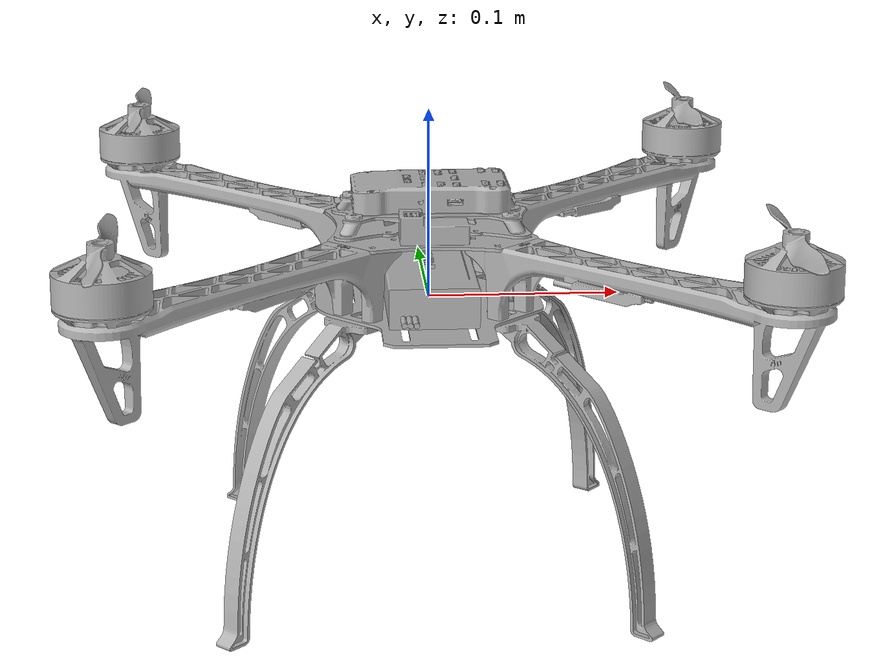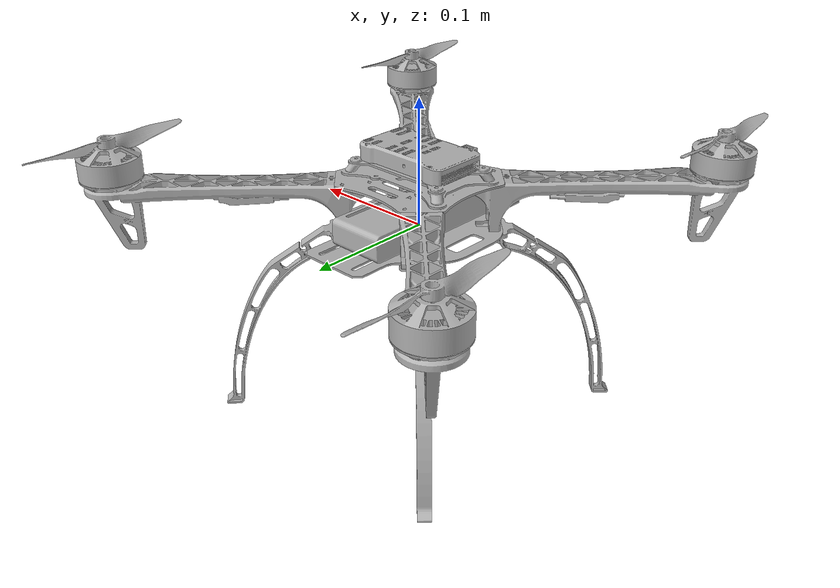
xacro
<?xml version="1.0" ?>
<robot name="f450_quadcopter" xmlns:xacro="http://www.ros.org/wiki/xacro">

<xacro:include filename="$(find f450_quadcopter_description)/urdf/materials.xacro" />
<xacro:include filename="$(find f450_quadcopter_description)/urdf/f450_quadcopter.trans" />
<xacro:include filename="$(find f450_quadcopter_description)/urdf/f450_quadcopter.gazebo" />
<link name="base_link">
  <inertial>
    <origin xyz="0.0009406193490346438 -0.0030878426147049366 0.04067397897871896" rpy="0 0 0"/>
    <mass value="0.7297364198372553"/>
    <inertia ixx="0.000888" iyy="0.000794" izz="0.000978" ixy="-7e-06" iyz="3e-06" ixz="-1.1e-05"/>
  </inertial>
  <visual>
    <origin xyz="0 0 0" rpy="0 0 0"/>
    <geometry>
      <mesh filename="package://f450_quadcopter_description/meshes/base_link.stl" scale="0.001 0.001 0.001"/>
    </geometry>
    <material name="silver"/>
  </visual>
  <collision>
    <origin xyz="0 0 0" rpy="0 0 0"/>
    <geometry>
      <mesh filename="package://f450_quadcopter_description/meshes/base_link.stl" scale="0.001 0.001 0.001"/>
    </geometry>
  </collision>
</link>

<link name="front_right_landing_gear_1">
  <inertial>
    <origin xyz="0.025294261945812482 -0.041134436986035604 -0.05102739648689262" rpy="0 0 0"/>
    <mass value="0.07882046618471968"/>
    <inertia ixx="0.000231" iyy="0.000231" izz="9.8e-05" ixy="4.8e-05" iyz="-8.5e-05" ixz="8.5e-05"/>
  </inertial>
  <visual>
    <origin xyz="-0.046836 0.032032 0.001109" rpy="0 0 0"/>
    <geometry>
      <mesh filename="package://f450_quadcopter_description/meshes/front_right_landing_gear_1.stl" scale="0.001 0.001 0.001"/>
    </geometry>
    <material name="silver"/>
  </visual>
  <collision>
    <origin xyz="-0.046836 0.032032 0.001109" rpy="0 0 0"/>
    <geometry>
      <mesh filename="package://f450_quadcopter_description/meshes/front_right_landing_gear_1.stl" scale="0.001 0.001 0.001"/>
    </geometry>
  </collision>
</link>

<link name="front_left_landing_gear_1">
  <inertial>
    <origin xyz="0.024360822856426795 0.04342215792884165 -0.05102747097051817" rpy="0 0 0"/>
    <mass value="0.07882027338023602"/>
    <inertia ixx="0.000239" iyy="0.000223" izz="9.8e-05" ixy="-4.7e-05" iyz="9.3e-05" ixz="7.8e-05"/>
  </inertial>
  <visual>
    <origin xyz="-0.046836 -0.032032 0.001109" rpy="0 0 0"/>
    <geometry>
      <mesh filename="package://f450_quadcopter_description/meshes/front_left_landing_gear_1.stl" scale="0.001 0.001 0.001"/>
    </geometry>
    <material name="silver"/>
  </visual>
  <collision>
    <origin xyz="-0.046836 -0.032032 0.001109" rpy="0 0 0"/>
    <geometry>
      <mesh filename="package://f450_quadcopter_description/meshes/front_left_landing_gear_1.stl" scale="0.001 0.001 0.001"/>
    </geometry>
  </collision>
</link>

<link name="back_right_landing_gear_1">
  <inertial>
    <origin xyz="-0.02667350157922735 -0.03975523117073223 -0.05102720548397814" rpy="0 0 0"/>
    <mass value="0.07882036783881333"/>
    <inertia ixx="0.000231" iyy="0.000231" izz="9.8e-05" ixy="-4.8e-05" iyz="-8.5e-05" ixz="-8.5e-05"/>
  </inertial>
  <visual>
    <origin xyz="0.04622 0.032032 0.001109" rpy="0 0 0"/>
    <geometry>
      <mesh filename="package://f450_quadcopter_description/meshes/back_right_landing_gear_1.stl" scale="0.001 0.001 0.001"/>
    </geometry>
    <material name="silver"/>
  </visual>
  <collision>
    <origin xyz="0.04622 0.032032 0.001109" rpy="0 0 0"/>
    <geometry>
      <mesh filename="package://f450_quadcopter_description/meshes/back_right_landing_gear_1.stl" scale="0.001 0.001 0.001"/>
    </geometry>
  </collision>
</link>

<link name="back_left_landing_gear_1">
  <inertial>
    <origin xyz="-0.025294199385980626 0.04113446662354433 -0.05102743593945869" rpy="0 0 0"/>
    <mass value="0.07882021989137157"/>
    <inertia ixx="0.000231" iyy="0.000231" izz="9.8e-05" ixy="4.8e-05" iyz="8.5e-05" ixz="-8.5e-05"/>
  </inertial>
  <visual>
    <origin xyz="0.04622 -0.032032 0.001109" rpy="0 0 0"/>
    <geometry>
      <mesh filename="package://f450_quadcopter_description/meshes/back_left_landing_gear_1.stl" scale="0.001 0.001 0.001"/>
    </geometry>
    <material name="silver"/>
  </visual>
  <collision>
    <origin xyz="0.04622 -0.032032 0.001109" rpy="0 0 0"/>
    <geometry>
      <mesh filename="package://f450_quadcopter_description/meshes/back_left_landing_gear_1.stl" scale="0.001 0.001 0.001"/>
    </geometry>
  </collision>
</link>

<link name="front_right_frame_with_ESC_1">
  <inertial>
    <origin xyz="0.0627356625385908 -0.0462589561999283 -0.00913633438305346" rpy="0 0 0"/>
    <mass value="0.05710348684611358"/>
    <inertia ixx="0.000136" iyy="0.000136" izz="0.000261" ixy="0.000126" iyz="-2e-06" ixz="2e-06"/>
  </inertial>
  <visual>
    <origin xyz="-0.031774 0.048083 -0.037298" rpy="0 0 0"/>
    <geometry>
      <mesh filename="package://f450_quadcopter_description/meshes/front_right_frame_with_ESC_1.stl" scale="0.001 0.001 0.001"/>
    </geometry>
    <material name="silver"/>
  </visual>
  <collision>
    <origin xyz="-0.031774 0.048083 -0.037298" rpy="0 0 0"/>
    <geometry>
      <mesh filename="package://f450_quadcopter_description/meshes/front_right_frame_with_ESC_1.stl" scale="0.001 0.001 0.001"/>
    </geometry>
  </collision>
</link>

<link name="front_left_frame_with_ESC_1">
  <inertial>
    <origin xyz="0.0628547617311962 0.046141647985313866 -0.00912134468470065" rpy="0 0 0"/>
    <mass value="0.05710345576082083"/>
    <inertia ixx="0.000136" iyy="0.000136" izz="0.000261" ixy="-0.000126" iyz="2e-06" ixz="2e-06"/>
  </inertial>
  <visual>
    <origin xyz="-0.031774 -0.048083 -0.037298" rpy="0 0 0"/>
    <geometry>
      <mesh filename="package://f450_quadcopter_description/meshes/front_left_frame_with_ESC_1.stl" scale="0.001 0.001 0.001"/>
    </geometry>
    <material name="silver"/>
  </visual>
  <collision>
    <origin xyz="-0.031774 -0.048083 -0.037298" rpy="0 0 0"/>
    <geometry>
      <mesh filename="package://f450_quadcopter_description/meshes/front_left_frame_with_ESC_1.stl" scale="0.001 0.001 0.001"/>
    </geometry>
  </collision>
</link>

<link name="back_right_frame_with_ESC_1">
  <inertial>
    <origin xyz="-0.06287835959192258 -0.04609961114854541 -0.009137427312031227" rpy="0 0 0"/>
    <mass value="0.05567256178416202"/>
    <inertia ixx="0.000133" iyy="0.000133" izz="0.000254" ixy="-0.000122" iyz="-2e-06" ixz="-2e-06"/>
  </inertial>
  <visual>
    <origin xyz="0.031158 0.048083 -0.037298" rpy="0 0 0"/>
    <geometry>
      <mesh filename="package://f450_quadcopter_description/meshes/back_right_frame_with_ESC_1.stl" scale="0.001 0.001 0.001"/>
    </geometry>
    <material name="silver"/>
  </visual>
  <collision>
    <origin xyz="0.031158 0.048083 -0.037298" rpy="0 0 0"/>
    <geometry>
      <mesh filename="package://f450_quadcopter_description/meshes/back_right_frame_with_ESC_1.stl" scale="0.001 0.001 0.001"/>
    </geometry>
  </collision>
</link>

<link name="back_left_frame_with_ESC_1">
  <inertial>
    <origin xyz="-0.06200791017040484 0.04550785627701051 -0.009113747930991015" rpy="0 0 0"/>
    <mass value="0.05567258778764262"/>
    <inertia ixx="0.000134" iyy="0.000134" izz="0.000256" ixy="0.000124" iyz="2e-06" ixz="-2e-06"/>
  </inertial>
  <visual>
    <origin xyz="0.031158 -0.048083 -0.037298" rpy="0 0 0"/>
    <geometry>
      <mesh filename="package://f450_quadcopter_description/meshes/back_left_frame_with_ESC_1.stl" scale="0.001 0.001 0.001"/>
    </geometry>
    <material name="silver"/>
  </visual>
  <collision>
    <origin xyz="0.031158 -0.048083 -0.037298" rpy="0 0 0"/>
    <geometry>
      <mesh filename="package://f450_quadcopter_description/meshes/back_left_frame_with_ESC_1.stl" scale="0.001 0.001 0.001"/>
    </geometry>
  </collision>
</link>

<link name="front_right_brushless_motor_1">
  <inertial>
    <origin xyz="-3.925789388806167e-05 2.1907662166337216e-05 0.012919945336722305" rpy="0 0 0"/>
    <mass value="0.14416060249891507"/>
    <inertia ixx="2.1e-05" iyy="2.1e-05" izz="2.8e-05" ixy="0.0" iyz="0.0" ixz="-0.0"/>
  </inertial>
  <visual>
    <origin xyz="-0.159209 0.158912 -0.037543" rpy="0 0 0"/>
    <geometry>
      <mesh filename="package://f450_quadcopter_description/meshes/front_right_brushless_motor_1.stl" scale="0.001 0.001 0.001"/>
    </geometry>
    <material name="silver"/>
  </visual>
  <collision>
    <origin xyz="-0.159209 0.158912 -0.037543" rpy="0 0 0"/>
    <geometry>
      <mesh filename="package://f450_quadcopter_description/meshes/front_right_brushless_motor_1.stl" scale="0.001 0.001 0.001"/>
    </geometry>
  </collision>
  <motor max_torque="0.289" max_speed="11100" efficiency="0.8" Kv="1000" Kt="0.024" />
</link>

<link name="front_left_brushless_motor_1">
  <inertial>
    <origin xyz="-3.956759723924841e-05 2.1728352646438465e-05 0.01291994533672182" rpy="0 0 0"/>
    <mass value="0.14416060249891507"/>
    <inertia ixx="2.1e-05" iyy="2.1e-05" izz="2.8e-05" ixy="0.0" iyz="0.0" ixz="-0.0"/>
  </inertial>
  <visual>
    <origin xyz="-0.15922 -0.158901 -0.037543" rpy="0 0 0"/>
    <geometry>
      <mesh filename="package://f450_quadcopter_description/meshes/front_left_brushless_motor_1.stl" scale="0.001 0.001 0.001"/>
    </geometry>
    <material name="silver"/>
  </visual>
  <collision>
    <origin xyz="-0.15922 -0.158901 -0.037543" rpy="0 0 0"/>
    <geometry>
      <mesh filename="package://f450_quadcopter_description/meshes/front_left_brushless_motor_1.stl" scale="0.001 0.001 0.001"/>
    </geometry>
  </collision>
  <motor max_torque="0.289" max_speed="11100" efficiency="0.8" Kv="1000" Kt="0.024" />
</link>

<link name="back_left_brushless_motor_1">
  <inertial>
    <origin xyz="-3.938828772379055e-05 2.141864929547377e-05 0.012919945336723838" rpy="0 0 0"/>
    <mass value="0.14416060249891507"/>
    <inertia ixx="2.1e-05" iyy="2.1e-05" izz="2.8e-05" ixy="0.0" iyz="0.0" ixz="-0.0"/>
  </inertial>
  <visual>
    <origin xyz="0.158593 -0.158912 -0.037543" rpy="0 0 0"/>
    <geometry>
      <mesh filename="package://f450_quadcopter_description/meshes/back_left_brushless_motor_1.stl" scale="0.001 0.001 0.001"/>
    </geometry>
    <material name="silver"/>
  </visual>
  <collision>
    <origin xyz="0.158593 -0.158912 -0.037543" rpy="0 0 0"/>
    <geometry>
      <mesh filename="package://f450_quadcopter_description/meshes/back_left_brushless_motor_1.stl" scale="0.001 0.001 0.001"/>
    </geometry>
  </collision>
  <motor max_torque="0.289" max_speed="11100" efficiency="0.8" Kv="1000" Kt="0.024" />
</link>

<link name="back_right_brushless_motor_1">
  <inertial>
    <origin xyz="-3.907858437302014e-05 2.1597958815539053e-05 0.012919945336721236" rpy="0 0 0"/>
    <mass value="0.14416060249891507"/>
    <inertia ixx="2.1e-05" iyy="2.1e-05" izz="2.8e-05" ixy="0.0" iyz="0.0" ixz="-0.0"/>
  </inertial>
  <visual>
    <origin xyz="0.158604 0.158901 -0.037543" rpy="0 0 0"/>
    <geometry>
      <mesh filename="package://f450_quadcopter_description/meshes/back_right_brushless_motor_1.stl" scale="0.001 0.001 0.001"/>
    </geometry>
    <material name="silver"/>
  </visual>
  <collision>
    <origin xyz="0.158604 0.158901 -0.037543" rpy="0 0 0"/>
    <geometry>
      <mesh filename="package://f450_quadcopter_description/meshes/back_right_brushless_motor_1.stl" scale="0.001 0.001 0.001"/>
    </geometry>
  </collision>
  <motor max_torque="0.289" max_speed="11100" efficiency="0.8" Kv="1000" Kt="0.024" />
</link>

<link name="front_right_propeller_1">
  <inertial>
    <origin xyz="1.0534697383879355e-07 4.1879103393482886e-07 0.0027200813911011368" rpy="0 0 0"/>
    <mass value="0.01381427696565738"/>
    <inertia ixx="1.1e-05" iyy="0.0" izz="1.1e-05" ixy="-0.0" iyz="0.0" ixz="0.0"/>
  </inertial>
  <visual>
    <origin xyz="-0.159209 0.158912 -0.065543" rpy="0 0 0"/>
    <geometry>
      <mesh filename="package://f450_quadcopter_description/meshes/front_right_propeller_1.stl" scale="0.001 0.001 0.001"/>
    </geometry>
    <material name="silver"/>
  </visual>
  <collision>
    <origin xyz="-0.159209 0.158912 -0.065543" rpy="0 0 0"/>
    <geometry>
      <mesh filename="package://f450_quadcopter_description/meshes/front_right_propeller_1.stl" scale="0.001 0.001 0.001"/>
    </geometry>
  </collision>
</link>

<link name="front_left_propeller_1">
  <inertial>
    <origin xyz="-2.0435637707039156e-07 2.394815140360773e-07 0.0027200813911007204" rpy="0 0 0"/>
    <mass value="0.01381427696565738"/>
    <inertia ixx="1.1e-05" iyy="0.0" izz="1.1e-05" ixy="-0.0" iyz="0.0" ixz="0.0"/>
  </inertial>
  <visual>
    <origin xyz="-0.15922 -0.158901 -0.065543" rpy="0 0 0"/>
    <geometry>
      <mesh filename="package://f450_quadcopter_description/meshes/front_left_propeller_1.stl" scale="0.001 0.001 0.001"/>
    </geometry>
    <material name="silver"/>
  </visual>
  <collision>
    <origin xyz="-0.15922 -0.158901 -0.065543" rpy="0 0 0"/>
    <geometry>
      <mesh filename="package://f450_quadcopter_description/meshes/front_left_propeller_1.stl" scale="0.001 0.001 0.001"/>
    </geometry>
  </collision>
</link>

<link name="back_right_propeller_1">
  <inertial>
    <origin xyz="2.846564886027636e-07 1.0908768358075527e-07 0.0027200813911001237" rpy="0 0 0"/>
    <mass value="0.01381427696565738"/>
    <inertia ixx="1.1e-05" iyy="0.0" izz="1.1e-05" ixy="-0.0" iyz="0.0" ixz="0.0"/>
  </inertial>
  <visual>
    <origin xyz="0.158604 0.158901 -0.065543" rpy="0 0 0"/>
    <geometry>
      <mesh filename="package://f450_quadcopter_description/meshes/back_right_propeller_1.stl" scale="0.001 0.001 0.001"/>
    </geometry>
    <material name="silver"/>
  </visual>
  <collision>
    <origin xyz="0.158604 0.158901 -0.065543" rpy="0 0 0"/>
    <geometry>
      <mesh filename="package://f450_quadcopter_description/meshes/back_right_propeller_1.stl" scale="0.001 0.001 0.001"/>
    </geometry>
  </collision>
</link>

<link name="back_left_propeller_1">
  <inertial>
    <origin xyz="-2.5046861723554414e-08 -7.022183695637452e-08 0.0027200813911026495" rpy="0 0 0"/>
    <mass value="0.01381427696565738"/>
    <inertia ixx="1.1e-05" iyy="0.0" izz="1.1e-05" ixy="-0.0" iyz="0.0" ixz="0.0"/>
  </inertial>
  <visual>
    <origin xyz="0.158593 -0.158912 -0.065543" rpy="0 0 0"/>
    <geometry>
      <mesh filename="package://f450_quadcopter_description/meshes/back_left_propeller_1.stl" scale="0.001 0.001 0.001"/>
    </geometry>
    <material name="silver"/>
  </visual>
  <collision>
    <origin xyz="0.158593 -0.158912 -0.065543" rpy="0 0 0"/>
    <geometry>
      <mesh filename="package://f450_quadcopter_description/meshes/back_left_propeller_1.stl" scale="0.001 0.001 0.001"/>
    </geometry>
  </collision>
</link>

<link name="battery_1">
  <inertial>
    <origin xyz="-3.459575873813255e-05 0.0016091484657327873 0.009903990760029159" rpy="0 0 0"/>
    <mass value="0.945247365761568"/>
    <inertia ixx="0.001446" iyy="0.000201" izz="0.001585" ixy="0.0" iyz="2e-06" ixz="0.0"/>
  </inertial>
  <visual>
    <origin xyz="0.001011 -0.0 -0.000492" rpy="0 0 0"/>
    <geometry>
      <mesh filename="package://f450_quadcopter_description/meshes/battery_1.stl" scale="0.001 0.001 0.001"/>
    </geometry>
    <material name="silver"/>
  </visual>
  <collision>
    <origin xyz="0.001011 -0.0 -0.000492" rpy="0 0 0"/>
    <geometry>
      <mesh filename="package://f450_quadcopter_description/meshes/battery_1.stl" scale="0.001 0.001 0.001"/>
    </geometry>
  </collision>
</link>

<joint name="front_left_lading_gear_joint" type="fixed">
  <origin xyz="0.046836 -0.032032 -0.001109" rpy="0 0 0"/>
  <parent link="base_link"/>
  <child link="front_right_landing_gear_1"/>
</joint>

<joint name="front_right_lading_gear_joint" type="fixed">
  <origin xyz="0.046836 0.032032 -0.001109" rpy="0 0 0"/>
  <parent link="base_link"/>
  <child link="front_left_landing_gear_1"/>
</joint>

<joint name="back_right_lading_gear_joint" type="fixed">
  <origin xyz="-0.04622 -0.032032 -0.001109" rpy="0 0 0"/>
  <parent link="base_link"/>
  <child link="back_right_landing_gear_1"/>
</joint>

<joint name="back_left_lading_gear_joint" type="fixed">
  <origin xyz="-0.04622 0.032032 -0.001109" rpy="0 0 0"/>
  <parent link="base_link"/>
  <child link="back_left_landing_gear_1"/>
</joint>

<joint name="front_right_frame_with_ESC_joint" type="fixed">
  <origin xyz="0.031774 -0.048083 0.037298" rpy="0 0 0"/>
  <parent link="base_link"/>
  <child link="front_right_frame_with_ESC_1"/>
</joint>

<joint name="front_left_frame_with_ESC_joint" type="fixed">
  <origin xyz="0.031774 0.048083 0.037298" rpy="0 0 0"/>
  <parent link="base_link"/>
  <child link="front_left_frame_with_ESC_1"/>
</joint>

<joint name="back_right_frame_with_ESC_joint" type="fixed">
  <origin xyz="-0.031158 -0.048083 0.037298" rpy="0 0 0"/>
  <parent link="base_link"/>
  <child link="back_right_frame_with_ESC_1"/>
</joint>

<joint name="back_left_frame_with_ESC_joint" type="fixed">
  <origin xyz="-0.031158 0.048083 0.037298" rpy="0 0 0"/>
  <parent link="base_link"/>
  <child link="back_left_frame_with_ESC_1"/>
</joint>

<joint name="front_right_brushless_motor_joint" type="fixed">
  <origin xyz="0.127435 -0.110829 0.000245" rpy="0 0 0"/>
  <parent link="front_right_frame_with_ESC_1"/>
  <child link="front_right_brushless_motor_1"/>
</joint>

<joint name="front_left_brushless_motor_joint" type="fixed">
  <origin xyz="0.127446 0.110818 0.000245" rpy="0 0 0"/>
  <parent link="front_left_frame_with_ESC_1"/>
  <child link="front_left_brushless_motor_1"/>
</joint>

<joint name="back_left_brushless_motor_joint" type="fixed">
  <origin xyz="-0.127435 0.110829 0.000245" rpy="0 0 0"/>
  <parent link="back_left_frame_with_ESC_1"/>
  <child link="back_left_brushless_motor_1"/>
</joint>

<joint name="back_right_brushless_motor_joint" type="fixed">
  <origin xyz="-0.127446 -0.110818 0.000245" rpy="0 0 0"/>
  <parent link="back_right_frame_with_ESC_1"/>
  <child link="back_right_brushless_motor_1"/>
</joint>

<joint name="front_right_propeller_joint" type="continuous">
  <origin xyz="0.0 0.0 0.028" rpy="0 0 0"/>
  <parent link="front_right_brushless_motor_1"/>
  <child link="front_right_propeller_1"/>
  <axis xyz="0.0 0.0 1.0"/>
</joint>

<joint name="front_left_propeller_joint" type="continuous">
  <origin xyz="0.0 0.0 0.028" rpy="0 0 0"/>
  <parent link="front_left_brushless_motor_1"/>
  <child link="front_left_propeller_1"/>
  <axis xyz="0.0 0.0 -1.0"/>
</joint>

<joint name="back_right_propeller_joint" type="continuous">
  <origin xyz="0.0 0.0 0.028" rpy="0 0 0"/>
  <parent link="back_right_brushless_motor_1"/>
  <child link="back_right_propeller_1"/>
  <axis xyz="-0.0 0.0 -1.0"/>
</joint>

<joint name="back_left_propeller_joint" type="continuous">
  <origin xyz="0.0 0.0 0.028" rpy="0 0 0"/>
  <parent link="back_left_brushless_motor_1"/>
  <child link="back_left_propeller_1"/>
  <axis xyz="0.0 0.0 1.0"/>
</joint>

<joint name="battery_joint" type="fixed">
  <origin xyz="-0.001011 0.0 0.000492" rpy="0 0 0"/>
  <parent link="base_link"/>
  <child link="battery_1"/>
</joint>

</robot>

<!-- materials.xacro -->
<robot name="f450_quadcopter" xmlns:xacro="http://www.ros.org/wiki/xacro" >

<material name="silver">
  <color rgba="0.700 0.700 0.700 1.000"/>
</material>

</robot>

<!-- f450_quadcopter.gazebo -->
<robot name="f450_quadcopter" xmlns:xacro="http://www.ros.org/wiki/xacro" >

<xacro:property name="body_color" value="Gazebo/Silver" />

<gazebo>
  <plugin name="control" filename="libgazebo_ros_control.so">
    <legacyModeNS>true</legacyModeNS>
  </plugin>
</gazebo>

<gazebo reference="base_link">
  <material>${body_color}</material>
  <mu1>0.2</mu1>
  <mu2>0.2</mu2>
  <selfCollide>true</selfCollide>
  <gravity>true</gravity>
</gazebo>

<gazebo reference="front_right_landing_gear_1">
  <material>${body_color}</material>
  <mu1>0.2</mu1>
  <mu2>0.2</mu2>
  <selfCollide>true</selfCollide>
</gazebo>

<gazebo reference="front_left_landing_gear_1">
  <material>${body_color}</material>
  <mu1>0.2</mu1>
  <mu2>0.2</mu2>
  <selfCollide>true</selfCollide>
</gazebo>

<gazebo reference="back_right_landing_gear_1">
  <material>${body_color}</material>
  <mu1>0.2</mu1>
  <mu2>0.2</mu2>
  <selfCollide>true</selfCollide>
</gazebo>

<gazebo reference="back_left_landing_gear_1">
  <material>${body_color}</material>
  <mu1>0.2</mu1>
  <mu2>0.2</mu2>
  <selfCollide>true</selfCollide>
</gazebo>

<gazebo reference="front_right_frame_with_ESC_1">
  <material>${body_color}</material>
  <mu1>0.2</mu1>
  <mu2>0.2</mu2>
  <selfCollide>true</selfCollide>
</gazebo>

<gazebo reference="front_left_frame_with_ESC_1">
  <material>${body_color}</material>
  <mu1>0.2</mu1>
  <mu2>0.2</mu2>
  <selfCollide>true</selfCollide>
</gazebo>

<gazebo reference="back_right_frame_with_ESC_1">
  <material>${body_color}</material>
  <mu1>0.2</mu1>
  <mu2>0.2</mu2>
  <selfCollide>true</selfCollide>
</gazebo>

<gazebo reference="back_left_frame_with_ESC_1">
  <material>${body_color}</material>
  <mu1>0.2</mu1>
  <mu2>0.2</mu2>
  <selfCollide>true</selfCollide>
</gazebo>

<gazebo reference="front_right_brushless_motor_1">
  <material>${body_color}</material>
  <mu1>0.2</mu1>
  <mu2>0.2</mu2>
  <selfCollide>true</selfCollide>
</gazebo>

<gazebo reference="front_left_brushless_motor_1">
  <material>${body_color}</material>
  <mu1>0.2</mu1>
  <mu2>0.2</mu2>
  <selfCollide>true</selfCollide>
</gazebo>

<gazebo reference="back_left_brushless_motor_1">
  <material>${body_color}</material>
  <mu1>0.2</mu1>
  <mu2>0.2</mu2>
  <selfCollide>true</selfCollide>
</gazebo>

<gazebo reference="back_right_brushless_motor_1">
  <material>${body_color}</material>
  <mu1>0.2</mu1>
  <mu2>0.2</mu2>
  <selfCollide>true</selfCollide>
</gazebo>

<gazebo reference="front_right_propeller_1">
  <material>${body_color}</material>
  <mu1>0.2</mu1>
  <mu2>0.2</mu2>
  <selfCollide>true</selfCollide>
</gazebo>

<gazebo reference="front_left_propeller_1">
  <material>${body_color}</material>
  <mu1>0.2</mu1>
  <mu2>0.2</mu2>
  <selfCollide>true</selfCollide>
</gazebo>

<gazebo reference="back_right_propeller_1">
  <material>${body_color}</material>
  <mu1>0.2</mu1>
  <mu2>0.2</mu2>
  <selfCollide>true</selfCollide>
</gazebo>

<gazebo reference="back_left_propeller_1">
  <material>${body_color}</material>
  <mu1>0.2</mu1>
  <mu2>0.2</mu2>
  <selfCollide>true</selfCollide>
</gazebo>

<gazebo reference="battery_1">
  <material>${body_color}</material>
  <mu1>0.2</mu1>
  <mu2>0.2</mu2>
  <selfCollide>true</selfCollide>
</gazebo>

<gazebo>
  <plugin name="gazebo_ros_control" filename="libgazebo_ros_control.so">
    <robotNamespace>/f450_quadcopter</robotNamespace>
  </plugin>

  <plugin name="motor_model_plugin" filename="motor_model_plugin.py">
    <robotNamespace>/f450_quadcopter</robotNamespace>
    <!-- Add motor-specific parameters here -->
    <motor>
      <max_torque>0.289</max_torque>
      <max_speed_rpm>11100</max_speed_rpm>
      <efficiency>0.80</efficiency>
      <kv_rating>1000</kv_rating>
      <kt_rating>0.024</kt_rating>
    </motor>
  </plugin>

  <plugin name="aerodynamics_model_plugin" filename="aerodynamics_model_plugin.py">
    <robotNamespace>/f450_quadcopter</robotNamespace>
    <!-- Add aerodynamics-specific parameters here -->
    <aerodynamics>
      <lift_coefficient>0.042</lift_coefficient>
      <drag_coefficient>0.031</drag_coefficient>
      <propeller_diameter>0.254</propeller_diameter>
      <propeller_pitch>0.1143</propeller_pitch>
      <air_density>1.225</air_density>
    </aerodynamics>
  </plugin>
</gazebo>

<gazebo>
    <plugin name="imu_plugin" filename="libgazebo_ros_imu.so">
      <!-- Add the plugin parameters here -->
      <updateRate>1000.0</updateRate>
      <alwaysOn>true</alwaysOn>
      <bodyName>base_link</bodyName>
      <gaussianNoise>0.01</gaussianNoise>
      <topicName>/imu/data</topicName>
      <frameId>base_link</frameId>
      <xyzOffset>0 0 0</xyzOffset>
      <rpyOffset>0 0 0</rpyOffset>
    </plugin>
  </gazebo>

</robot>
